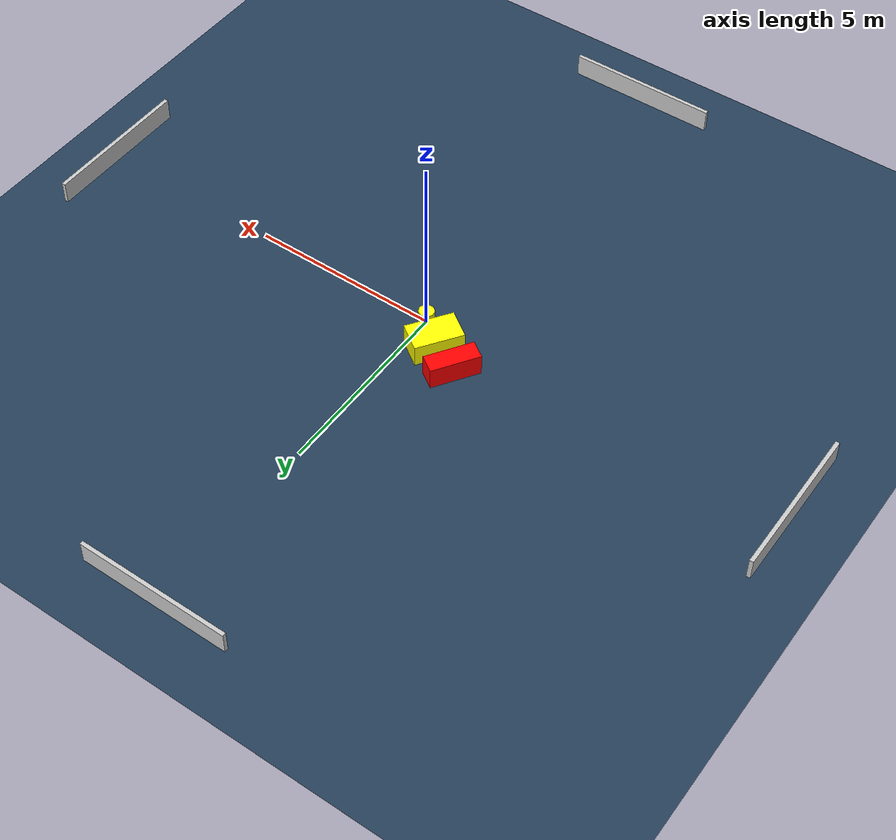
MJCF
<?xml version="1.0" ?>
<mujoco model="generated_environment">
  <option timestep="0.01" integrator="RK4" cone="elliptic"/>
  <default>
    <geom density="1"/>
  </default>
  <asset>
    <texture builtin="gradient" height="3072" name="skybox" rgb1="0.3 0.5 0.7" rgb2="0 0 0" type="skybox" width="512"/>
    <texture builtin="checker" height="300" name="groundplane" rgb1="0.2 0.3 0.4" rgb2="0.1 0.2 0.3" type="2d" width="300"/>
    <material name="groundplane" reflectance="0.2" texrepeat="5 5" texture="groundplane"/>
  </asset>
  <worldbody>
    <light dir="0 0 -1" directional="true" pos="0 0 1.5"/>
    <geom condim="3" friction="0.5 0.005 0.001" material="groundplane" name="floor" pos="0 0 0" size="0 0 0.05" type="plane"/>
    <body name="walls">
      <geom name="wall_1" condim="4" pos="-10.0 0.0 0.3" rgba="0.800000011920929 0.800000011920929 0.800000011920929 1.0" size="0.05 2.0 0.3" type="box"/>
      <geom name="wall_2" condim="4" pos="10.0 0.0 0.3" rgba="0.800000011920929 0.800000011920929 0.800000011920929 1.0" size="0.05 2.0 0.3" type="box"/>
      <geom name="wall_3" condim="4" pos="0.0 -10.0 0.3" rgba="0.800000011920929 0.800000011920929 0.800000011920929 1.0" size="2.0 0.05 0.3" type="box"/>
      <geom name="wall_4" condim="4" pos="0.0 10.0 0.3" rgba="0.800000011920929 0.800000011920929 0.800000011920929 1.0" size="2.0 0.05 0.3" type="box"/>
    </body>
    <body name="robot">
      <joint name="joint_x" type="slide" pos="0 0 0" axis="1 0 0"/>
      <joint name="joint_y" type="slide" pos="0 0 0" axis="0 1 0"/>
      <geom name="robot" type="cylinder" pos="0.0 0.0 0.2" size="0.2 0.2 0.0" mass="5.0" friction="1.0 0.005 0.0001" condim="4" rgba="1.0 1.0 0.0 1.0"/>
    </body>
    <body name="obstacle_1_movable">
      <geom name="obstacle_1_movable" condim="4" pos="-0.6238953339851796 0.5538089061448999 0.3" euler="0 0 145.3114084862354" friction="0.0 0.005 0.001" rgba="1.0 1.0 0.0 1.0" size="0.38559084327206805 0.6399578380512405 0.3" type="box" mass="0.1"/>
      <joint type="free"/>
    </body>
    <body name="obstacle_2_static">
      <geom name="obstacle_2_static" condim="4" pos="-1.4453153658484257 0.9804724354596439 0.3" euler="0 0 326.4324102708456" friction="0.0 0.005 0.001" rgba="1.0 0.0 0.0 1.0" size="0.24450622978365394 0.651027609457279 0.3" type="box"/>
    </body>
  </worldbody>
  <actuator>
    <motor name="actuator_x" joint="joint_x" gear="1" ctrlrange="-1 1"/>
    <motor name="actuator_y" joint="joint_y" gear="1" ctrlrange="-1 1"/>
  </actuator>
</mujoco>
